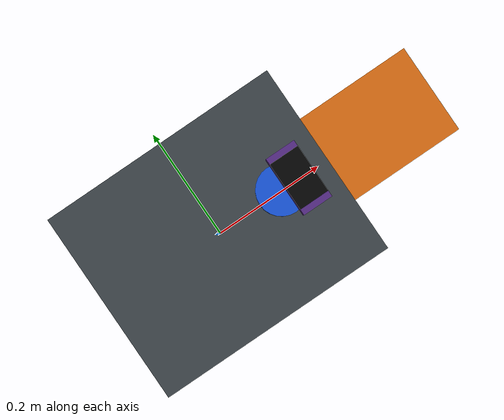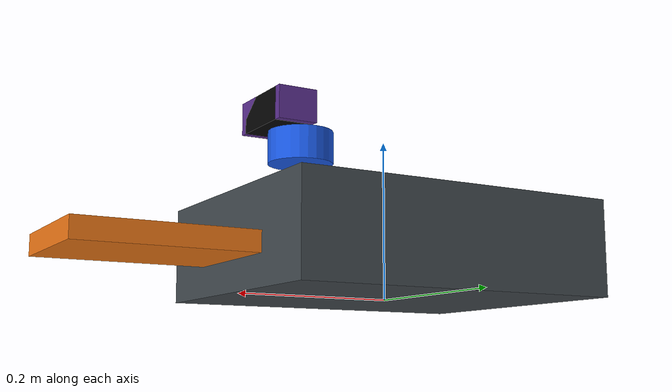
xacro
<?xml version="1.0"?>
<robot name="rdk_transport_robot" xmlns:xacro="http://www.ros.org/wiki/xacro">
  <xacro:property name="base_length" value="0.42"/>
  <xacro:property name="base_width" value="0.34"/>
  <xacro:property name="base_height" value="0.12"/>

  <link name="base_link">
    <visual>
      <origin xyz="0 0 0.06" rpy="0 0 0"/>
      <geometry>
        <box size="${base_length} ${base_width} ${base_height}"/>
      </geometry>
      <material name="base_gray">
        <color rgba="0.25 0.28 0.30 1.0"/>
      </material>
    </visual>
    <collision>
      <origin xyz="0 0 0.06" rpy="0 0 0"/>
      <geometry>
        <box size="${base_length} ${base_width} ${base_height}"/>
      </geometry>
    </collision>
  </link>

  <link name="laser">
    <visual>
      <origin xyz="0 0 0" rpy="0 0 0"/>
      <geometry>
        <cylinder radius="0.04" length="0.04"/>
      </geometry>
      <material name="laser_blue">
        <color rgba="0.1 0.35 0.9 1.0"/>
      </material>
    </visual>
  </link>
  <joint name="base_to_laser" type="fixed">
    <parent link="base_link"/>
    <child link="laser"/>
    <origin xyz="0.12 0.0 0.18" rpy="0 0 0"/>
  </joint>

  <link name="imu_link">
    <visual>
      <origin xyz="0 0 0" rpy="0 0 0"/>
      <geometry>
        <box size="0.04 0.03 0.01"/>
      </geometry>
      <material name="imu_green">
        <color rgba="0.1 0.7 0.25 1.0"/>
      </material>
    </visual>
  </link>
  <joint name="base_to_imu" type="fixed">
    <parent link="base_link"/>
    <child link="imu_link"/>
    <origin xyz="0.0 0.0 0.08" rpy="0 0 0"/>
  </joint>

  <link name="camera_link">
    <visual>
      <origin xyz="0 0 0" rpy="0 0 0"/>
      <geometry>
        <box size="0.05 0.08 0.04"/>
      </geometry>
      <material name="camera_black">
        <color rgba="0.02 0.02 0.02 1.0"/>
      </material>
    </visual>
  </link>
  <joint name="base_to_camera" type="fixed">
    <parent link="base_link"/>
    <child link="camera_link"/>
    <origin xyz="0.15 0.0 0.22" rpy="0 0 0"/>
  </joint>

  <link name="depth_camera_link">
    <visual>
      <origin xyz="0 0 0" rpy="0 0 0"/>
      <geometry>
        <box size="0.05 0.10 0.04"/>
      </geometry>
      <material name="depth_camera_purple">
        <color rgba="0.35 0.18 0.55 1.0"/>
      </material>
    </visual>
  </link>
  <joint name="base_to_depth_camera" type="fixed">
    <parent link="base_link"/>
    <child link="depth_camera_link"/>
    <origin xyz="0.15 0.0 0.22" rpy="0 0 0"/>
  </joint>

  <link name="fork_link">
    <visual>
      <origin xyz="0.12 0 0.02" rpy="0 0 0"/>
      <geometry>
        <box size="0.24 0.16 0.025"/>
      </geometry>
      <material name="fork_orange">
        <color rgba="0.9 0.45 0.08 1.0"/>
      </material>
    </visual>
  </link>
  <joint name="base_to_fork" type="fixed">
    <parent link="base_link"/>
    <child link="fork_link"/>
    <origin xyz="0.18 0.0 0.03" rpy="0 0 0"/>
  </joint>
</robot>
